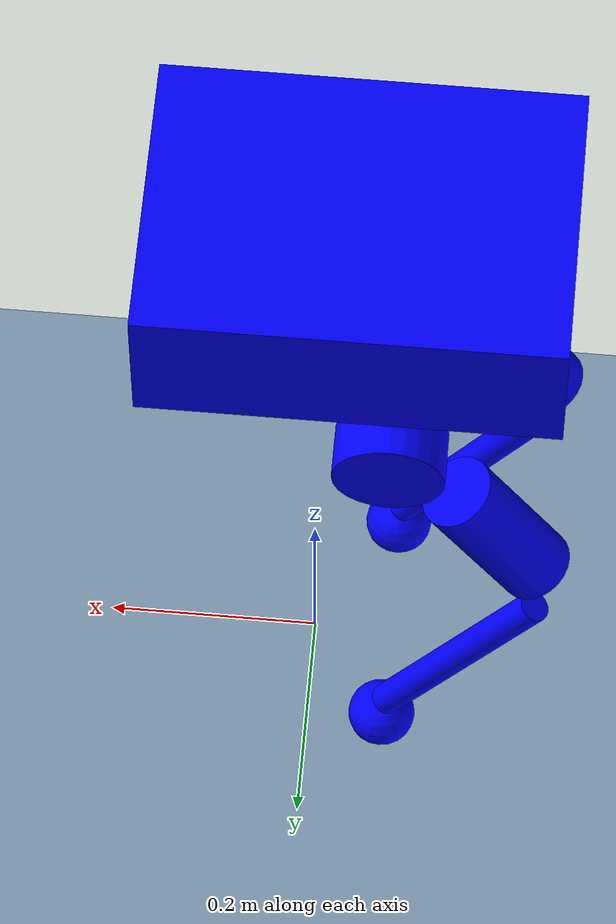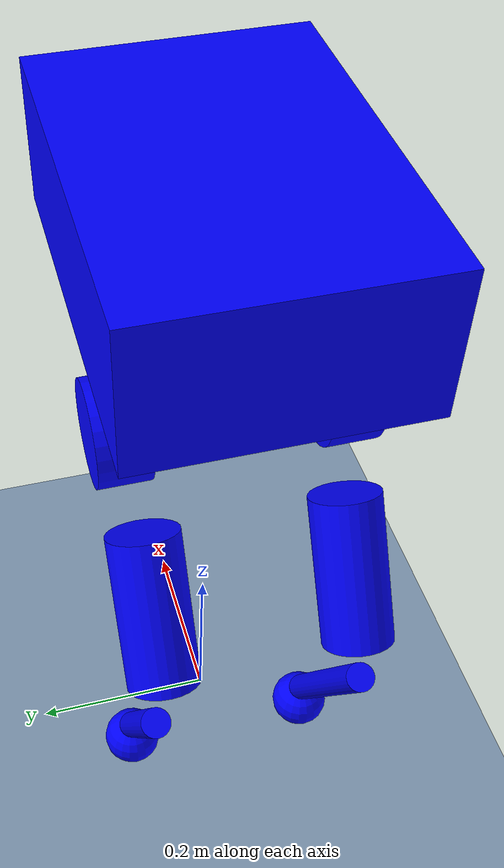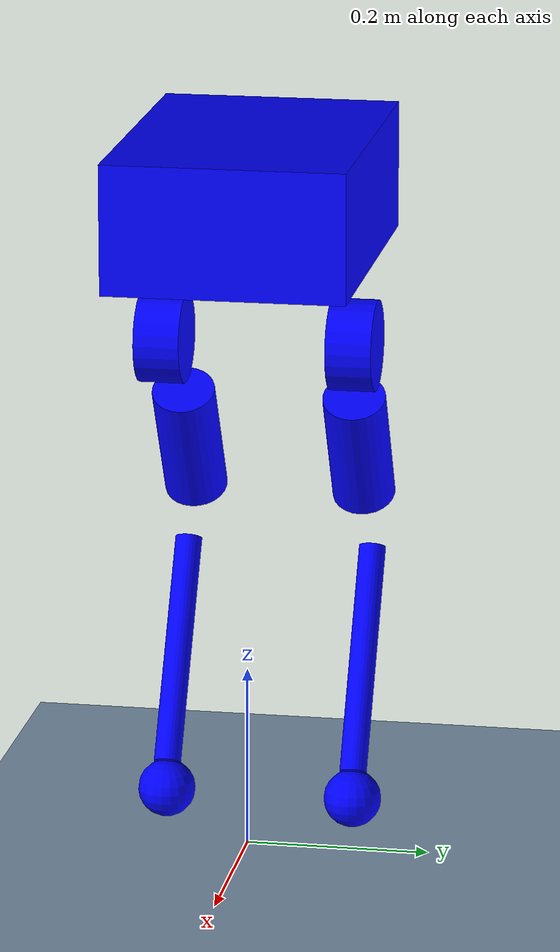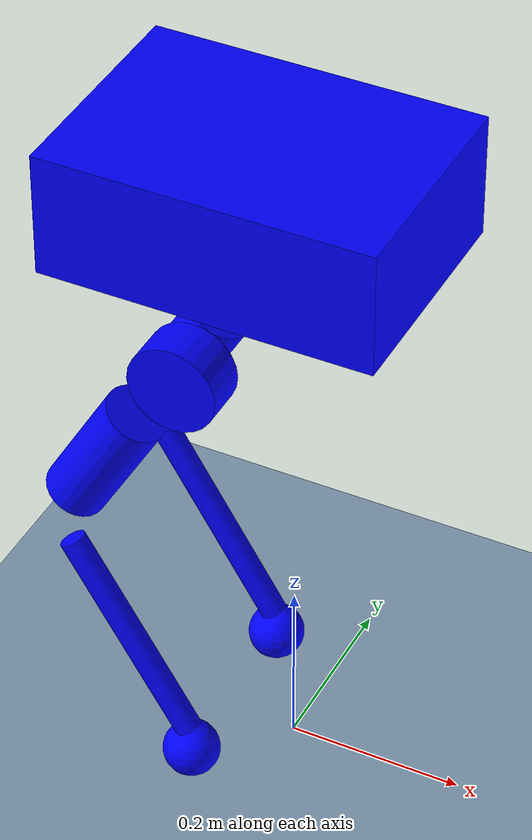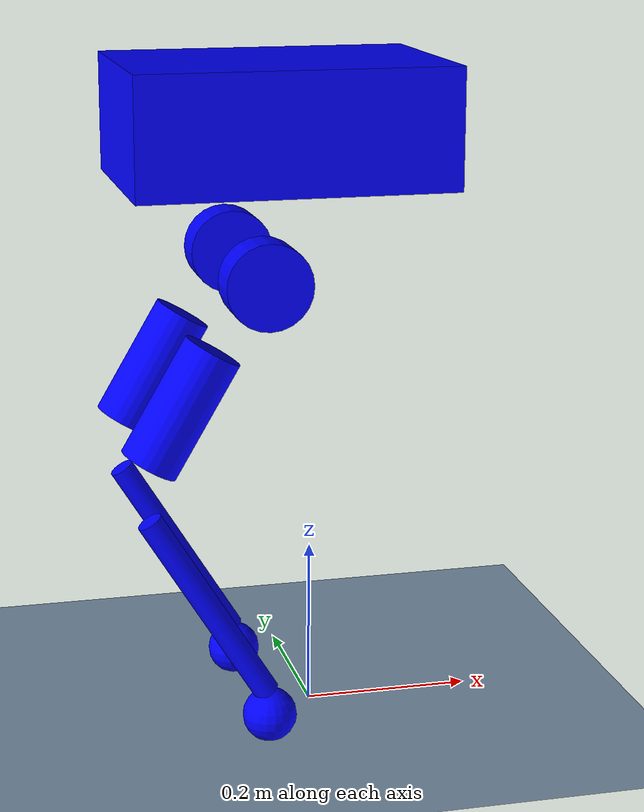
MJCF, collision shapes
<mujoco model="pointfoot">
    <compiler angle="radian" meshdir="../meshes/" />
    <size njmax="500" nconmax="100" />

    <default>
        <light castshadow="false" diffuse="1 1 1" />
        <camera fovy="60"/>
        <default class="visual">
            <geom contype="0" conaffinity="0" group="1" type="mesh" rgba="0.9 0.9 0.9 1.0"/>
        </default>
        <joint armature="0.01" damping="0.01"/>
        <geom contype="1" conaffinity="1" condim="3" friction="0.6 0.005 0.0001" rgba="0.5 0.6 0.7 0.0" margin="0.001" group="0" />
    </default>
    <visual>
        <rgba com="0.502 1.0 0 0.5" contactpoint="1.0 1.0 0.6 0.4" contactforce="0.2 0.98 0.2 0.8"/>
        <scale com="0.2" forcewidth="0.05" contactwidth="0.10" contactheight="0.04"/>
    </visual>

    <asset>
        <mesh name="base_Link" file="base_Link.STL" />
        <mesh name="abad_L_Link" file="abad_L_Link.STL" />
        <mesh name="hip_L_Link" file="hip_L_Link.STL" />
        <mesh name="knee_L_Link" file="knee_L_Link.STL" />
        <mesh name="foot_L_Link" file="foot_L_Link.STL" />
        <mesh name="abad_R_Link" file="abad_R_Link.STL" />
        <mesh name="hip_R_Link" file="hip_R_Link.STL" />
        <mesh name="knee_R_Link" file="knee_R_Link.STL" />
        <mesh name="foot_R_Link" file="foot_R_Link.STL" />
    </asset>

    <asset>
        <texture type='skybox' builtin='gradient' width='512' height='512' rgb1="1.0 1.0 1.0" rgb2="1.0 1.0 1.0"/>
        <texture name="texplane" type="2d" builtin="checker" rgb1="0.35 0.35 0.35" rgb2="0.55 0.55 0.55" width="512" height="512" mark="cross" markrgb=".8 .8 .8"/>
        <material name="matplane" reflectance="0.0" texture="texplane" texrepeat="1 1" texuniform="true"/>
    </asset>
        <option timestep="0.001"/>

    <worldbody>
        <geom name="floor" rgba="0.5 0.6 0.7 1" pos="0 0 0" size="0 0 0.25" type="plane" material="matplane" condim="3"/>
        <camera name="track" mode="trackcom" pos="0 -2.3 1.6" xyaxes="1 0 0 0 0.707 0.707"/>
        <light directional="true" diffuse=".8 .8 .8" pos="0 0 10" dir="0 0 -10"/>

        <body name="base_Link" pos="0 0 0.65">
            <inertial pos="-0.00982508 0.00235738 -0.015272" quat="0.937658 -0.0331911 -0.345796 -0.0109741" mass="9.006" diaginertia="0.141063 0.103771 0.0804952" />
            <joint type="free" limited="false" damping="0.0000" stiffness="0.0000" armature="0"/>
            <site name="imu" pos="0 0 0"/>
            <geom class="visual" rgba="0.79216 0.81961 0.93333 1" mesh="base_Link" />
            <geom name="base_collision" size="0.185 0.13 0.07" pos="-0.04 0 0.06969" type="box" rgba="0 0 1 0"/>

            <body name="abad_L_Link" pos="0.0042 0.105 -0.09876">
                <inertial pos="-0.06785 0.045853 0.001067" quat="0.598022 0.577826 0.406677 0.378287" mass="1.622" diaginertia="0.00291922 0.00244686 0.00163892" />
                <joint name="abad_L_Joint" pos="0 0 0" axis="1 0 0" limited="true" range="-0.38397 1.39626" />
                <geom class="visual" rgba="0.79216 0.81961 0.93333 1" mesh="abad_L_Link" />
                <geom name="abad_L_collision" size="0.05 0.025" pos="-0.08 0 0" quat="0.707388 0.706825 0 0" type="cylinder" rgba="0 0 1 0" />

                <body name="hip_L_Link" pos="-0.077 0.0205 0">
                    <inertial pos="-0.029468 -0.045739 -0.041923" quat="0.854303 0.19497 0.222006 0.42763" mass="2.401" diaginertia="0.0250687 0.0248125 0.00290381" />
                    <joint name="hip_L_Joint" pos="0 0 0" axis="0 1 0" limited="true" range="-1.01229 1.39626" />
                    <geom class="visual" rgba="1 1 1 1" mesh="hip_L_Link" />
                    <geom name="hip_L_collision" size="0.035 0.075" pos="-0.1 -0.03 -0.14" quat="0.965093 0 0.261909 0" type="cylinder" rgba="0 0 1 0" />

                    <body name="knee_L_Link" pos="-0.15 -0.0205 -0.25981">
                        <inertial pos="0.0684888 -3.1771e-05 -0.113858" quat="0.676994 -0.189727 -0.187539 0.685938" mass="0.734001" diaginertia="0.0109274 0.0108773 0.000216052" />
                        <joint name="knee_L_Joint" pos="0 0 0" axis="0 -1 0" limited="true" range="-0.872665 1.36136" />
                        <geom class="visual" rgba="0.79216 0.81961 0.93333 1" mesh="knee_L_Link" />
                        <geom name="knee_L_collision" size="0.015 0.13" pos="0.078 0 -0.12" quat="0.962425 0 -0.271547 0" type="cylinder" rgba="0 0 1 0"/>

                        <geom class="visual" pos="0.150 0 -0.2598" rgba="0.26667 0.26667 0.26667 1" mesh="foot_L_Link" />
                        <geom name="foot_L_collision" type="sphere" pos="0.14929 0 -0.26014" size="0.032" rgba="0 0 1 0" />
                    </body>
                </body>
            </body>

            <body name="abad_R_Link" pos="0.0042 -0.105 -0.09876">
                <inertial pos="-0.06785 -0.045853 0.001067" quat="0.378287 0.406677 0.577826 0.598022" mass="1.622" diaginertia="0.00291922 0.00244686 0.00163892" />
                <joint name="abad_R_Joint" pos="0 0 0" axis="1 0 0" limited="true" range="-1.39626 0.38397" />
                <geom class="visual" rgba="0.79216 0.81961 0.93333 1" mesh="abad_R_Link" />
                <geom name="abad_R_collision" size="0.05 0.025" pos="-0.08 0 0" quat="0.707388 0.706825 0 0" type="cylinder" rgba="0 0 1 0" />

                <body name="hip_R_Link" pos="-0.077 -0.0205 0">
                    <inertial pos="-0.029468 0.045739 -0.041923" quat="0.42763 0.222006 0.19497 0.854303" mass="2.401" diaginertia="0.0250687 0.0248125 0.00290381" />
                    <joint name="hip_R_Joint" pos="0 0 0" axis="0 -1 0" limited="true" range="-1.39626 1.01229" />
                    <geom class="visual" rgba="1 1 1 1" mesh="hip_R_Link" />
                    <geom name="hip_R_collision" size="0.035 0.075" pos="-0.1 0.03 -0.14" quat="0.965093 0 0.261909 0" type="cylinder" rgba="0 0 1 0" />

                    <body name="knee_R_Link" pos="-0.15 0.0205 -0.25981">
                        <inertial pos="0.0684888 3.17711e-05 -0.113858" quat="0.685938 -0.187539 -0.189727 0.676994" mass="0.734001" diaginertia="0.0109274 0.0108773 0.000216052" />
                        <joint name="knee_R_Joint" pos="0 0 0" axis="0 1 0" limited="true" range="-1.36136 0.872665" />
                        <geom class="visual" rgba="0.79216 0.81961 0.93333 1" mesh="knee_R_Link" />
                        <geom name="knee_R_collision" size="0.015 0.13" pos="0.078 0 -0.12" quat="0.962425 0 -0.271547 0" type="cylinder" rgba="0 0 1 0"/>

                        <geom class="visual" pos="0.14929 0 -0.26014" rgba="0.26667 0.26667 0.26667 1" mesh="foot_R_Link" />
                        <geom name="foot_R_collision" type="sphere" pos="0.14929 0 -0.26014" size="0.032" rgba="0 0 1 0" />
                    </body>
                </body>
            </body>
        </body>
    </worldbody>

    <actuator>
        <motor name="abad_L_Joint"  gear="1"  joint="abad_L_Joint" ctrllimited='true' ctrlrange='-80 80'/>
        <motor name="hip_L_Joint"   gear="1"  joint="hip_L_Joint" ctrllimited='true' ctrlrange='-80 80'/>
        <motor name="knee_L_Joint"  gear="1"  joint="knee_L_Joint" ctrllimited='true' ctrlrange='-80 80'/>
        <motor name="abad_R_Joint"  gear="1"  joint="abad_R_Joint" ctrllimited='true' ctrlrange='-80 80' />
        <motor name="hip_R_Joint"   gear="1"  joint="hip_R_Joint" ctrllimited='true' ctrlrange='-80 80' />
        <motor name="knee_R_Joint"  gear="1"  joint="knee_R_Joint" ctrllimited='true' ctrlrange='-80 80'/>
    </actuator>

    <sensor>
        <framequat name="quat" objtype="site" objname="imu"/>
        <gyro name="gyro" site="imu"/>
        <accelerometer name="acc" site="imu"/>
        <jointpos name="abad_L_Joint"    joint="abad_L_Joint" />
        <jointpos name="hip_L_Joint"     joint="hip_L_Joint" />
        <jointpos name="knee_L_Joint"    joint="knee_L_Joint" />
        <jointpos name="abad_R_Joint"    joint="abad_R_Joint" />
        <jointpos name="hip_R_Joint"     joint="hip_R_Joint" />
        <jointpos name="knee_R_Joint"    joint="knee_R_Joint" />
    </sensor>

</mujoco>
